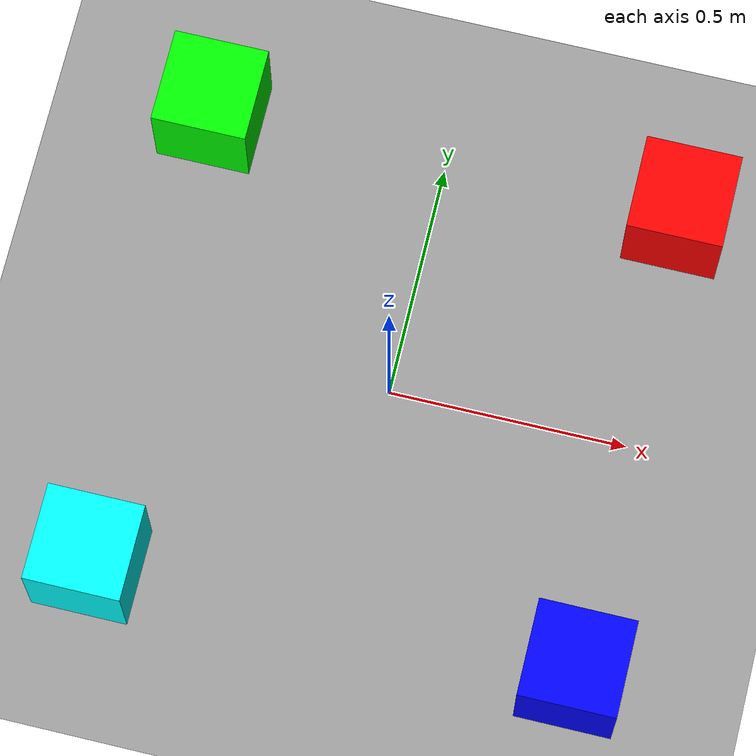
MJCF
<mujoco>
  <worldbody>
    <light diffuse=".5 .5 .5" pos="0 0 3" dir="0 0 -1"/>
    <geom type="plane" size="1 1 0.1" rgba=".6 .6 .6 1"/>
    <geom type="box" size=".1 .1 .1" pos=".5 .5 .1" rgba="1 0 0 1"/>
    <geom type="box" size=".1 .1 .1" pos="-.5 .5 .1" rgba="0 1 0 1"/>
    <geom type="box" size=".1 .1 .1" pos=".5 -.5 .1" rgba="0 0 1 1"/>
    <geom type="box" size=".1 .1 .1" pos="-.5 -.5 .1" rgba="0 1 1 1"/>
    <camera name="camera" pos="0 0 5" xyaxes="1 0 0 0 1 0" />
  </worldbody>
</mujoco>
